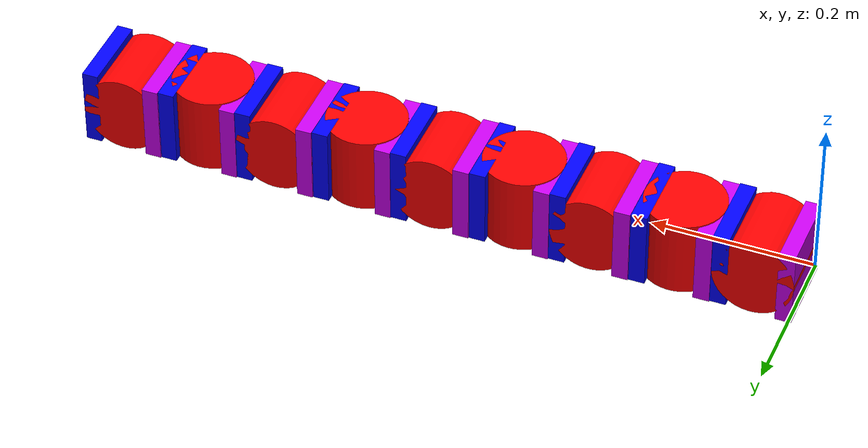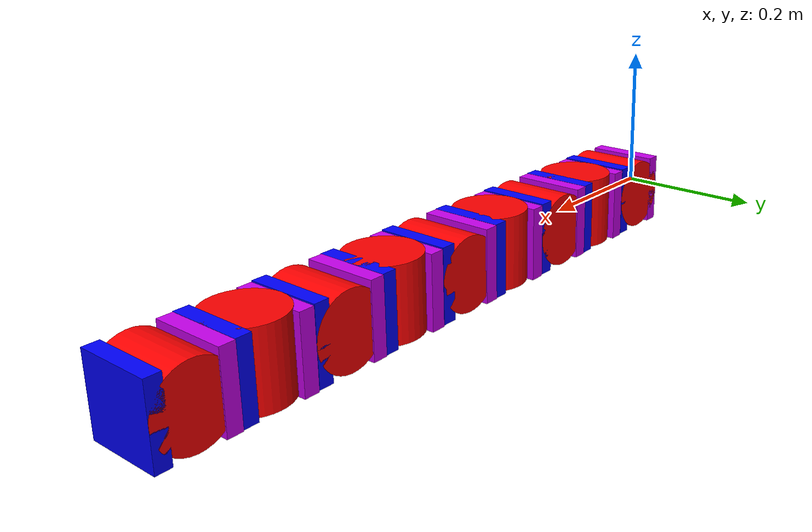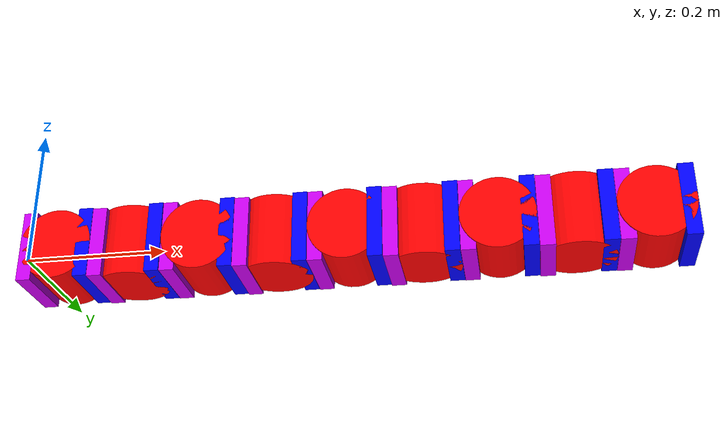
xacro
<?xml version="1.0"?>
<robot
  name="serp"
  xmlns:xacro="http://www.ros.org/wiki/xacro">

  <link name="map">
  </link>

    <xacro:property name="pi" value="3.1415926535897931" />

<xacro:macro name="eslabon" params="parent position x y angle axis">
  <joint name="${parent}" type="fixed">
    <origin xyz="${x} 0 0" rpy="0 0 0" />
    <parent link="${parent}"/>
    <child link="base_link${position}"/>
  </joint>

  <link
    name="base_link${position}">
    <inertial>
      <origin
        xyz="${x+0.03} 0 -0.0015809"
        rpy="0 0 0" />
      <mass
        value="0.2" />
      <inertia
        ixx="0.033333"
        ixy="7.6472E-21"
        ixz="-1.039E-21"
        iyy="0.017333"
        iyz="2.322E-21"
        izz="0.017333" />
    </inertial>
    <visual>
      <origin
        xyz="0 0 0"
        rpy="0 0 0" />
      <geometry>
        <mesh
          filename="package://serpiente_description/urdf/meshes_serpiente/base_link.stl" />
      </geometry>
      <material
        name="">
        <color
          rgba="0.79216 0 0.93333 1" />
      </material>
    </visual>
    <collision>
      <origin
        xyz="0 0 0"
        rpy="0 0 0" />
      <geometry>
        <mesh
          filename="package://serpiente_description/urdf/meshes_serpiente/base_link.stl" />
      </geometry>
    </collision>
  </link>

  <link
    name="cilinder${position}">
    <inertial>
      <origin
        xyz="${x+0.07} 2.7756E-17 1.3293E-50"
        rpy="0 0 0" />
      <mass
        value="0.7854" />
      <inertia
        ixx="0.011454"
        ixy="2.2588E-20"
        ixz="3.7494E-36"
        iyy="0.0098175"
        iyz="3.7944E-36"
        izz="0.011454" />
    </inertial>
    <visual>
      <origin
        xyz="0 0 0"
        rpy="0 0 0" />
      <geometry>
        <mesh
          filename="package://serpiente_description/urdf/meshes_serpiente/cilinder.stl" />
      </geometry>
      <material
        name="">
        <color
          rgba="1 0 0 1" />
      </material>
    </visual>
    <collision>
      <origin
        xyz="0 0 0"
        rpy="0 0 0" />
      <geometry>
        <mesh
          filename="package://serpiente_description/urdf/meshes_serpiente/cilinder.stl" />
      </geometry>
    </collision>
  </link>

  <joint
    name="base_cilinder_joint${position}"
    type="fixed">
    <origin
      xyz="0 0 0"
      rpy="${angle} 0 0" />
    <parent
      link="base_link${position}" />
    <child
      link="cilinder${position}" />
    <axis
      xyz="0 0 0" />
  </joint>

  <link
    name="blue_box${position}">
    <inertial>
      <origin
        xyz="0.04 0 2.0668E-19"
        rpy="0 0 0" />
      <mass
        value="0.2" />
      <inertia
        ixx="0.033333"
        ixy="3.4121E-21"
        ixz="-1.3214E-21"
        iyy="0.017333"
        iyz="2.322E-21"
        izz="0.017333" />
    </inertial>
    <visual>
      <origin
        xyz="0 0 0"
        rpy="0 0 0" />
      <geometry>
        <mesh
          filename="package://serpiente_description/urdf/meshes_serpiente/blue_box.stl" />
      </geometry>
      <material
        name="">
        <color
          rgba="0 0 1 1" />
      </material>
    </visual>
    <collision>
      <origin
        xyz="0 0 0"
        rpy="0 0 0" />
      <geometry>
        <mesh
          filename="package://serpiente_description/urdf/meshes_serpiente/blue_box.stl" />
      </geometry>
    </collision>
  </link>

  <joint
    name="box_cilinder_joint${position}"
    type="revolute">
    <origin
      xyz="0.05 0 0"
      rpy="0 0 0" />
    <parent
      link="cilinder${position}" />
    <child
      link="blue_box${position}" />
    <axis
      xyz="0 1 0" />
    <limit
      lower = "-2.5"
      upper = "2.5"
      effort="100"
      velocity="1000" />
  </joint>

<gazebo reference="base_link${position}">
  <material>Gazebo/Green</material>
</gazebo>
<gazebo reference="cilinder${position}">
  <material>Gazebo/Green</material>
</gazebo>
<gazebo reference="blue_box${position}">
  <material>Gazebo/Green</material>
</gazebo>

<transmission name="t_box_cilinder_joint${position}">
    <type>transmission_interface/SimpleTransmission</type>
    <joint name="box_cilinder_joint${position}">
        <hardwareInterface>EffortJointInterface</hardwareInterface>
    </joint>
    <actuator name="m_box_cilinder_joint${position}">
      <hardwareInterface>EffortJointInterface</hardwareInterface>
      <mechanicalReduction>1</mechanicalReduction>
    </actuator>
  </transmission>

</xacro:macro>

 <gazebo>
    <plugin filename="libgazebo_ros_control.so" name="gazebo_ros_control">
      <robotNamespace>/serp</robotNamespace>
    </plugin>
  </gazebo>

<xacro:eslabon parent="map" position="1" x="0.01" y="-0.08335" angle="0" axis="1" />
<xacro:eslabon parent="blue_box1" position="2" x="0.05" y="-0.08335" angle="${pi/2}" axis="1" />
<xacro:eslabon parent="blue_box2" position="3" x="0.05" y="-0.08335" angle="-${pi/2}" axis="1" />
<xacro:eslabon parent="blue_box3" position="4" x="0.05" y="-0.08335" angle="${pi/2}" axis="1" />
<xacro:eslabon parent="blue_box4" position="5" x="0.05" y="-0.08335" angle="-${pi/2}" axis="1" />
<xacro:eslabon parent="blue_box5" position="6" x="0.05" y="-0.08335" angle="${pi/2}" axis="1" />
<xacro:eslabon parent="blue_box6" position="7" x="0.05" y="-0.08335" angle="-${pi/2}" axis="1" />
<xacro:eslabon parent="blue_box7" position="8" x="0.05" y="-0.08335" angle="${pi/2}" axis="1" />
<xacro:eslabon parent="blue_box8" position="9" x="0.05" y="-0.08335" angle="-${pi/2}" axis="1" />
</robot>
